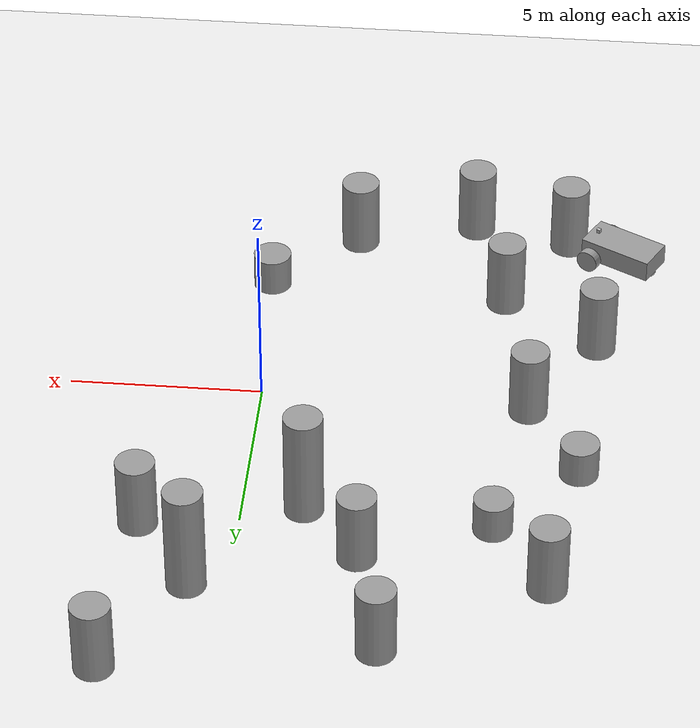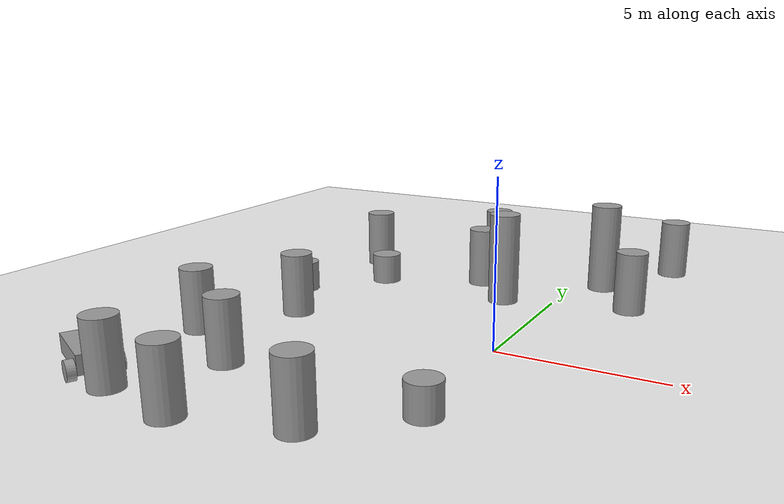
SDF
<sdf version="1.6">
 <world name="default">
  <model name="ground_plane">
   <static>1</static>
   <link name="link">
    <collision name="collision">
     <geometry><plane><normal>0 0 1</normal><size>100 100</size></plane></geometry>
     <surface><friction><ode><mu>100</mu><mu2>50</mu2></ode></friction></surface>
    </collision>
    <visual name="visual">
     <geometry><plane><normal>0 0 1</normal><size>100 100</size></plane></geometry>
     <material>
      <script><uri>file://media/materials/scripts/gazebo.material</uri><name>Gazebo/White</name></script>
     </material>
    </visual>
   </link>
  </model>
  <model name="unit_cylinder_5_clone_4">
   <link name="link">
    <inertial>
     <mass>1</mass>
     <inertia><ixx>0.145833</ixx><ixy>0</ixy><ixz>0</ixz><iyy>0.145833</iyy><iyz>0</iyz><izz>0.125</izz></inertia>
    </inertial>
    <visual name="visual">
     <geometry><cylinder><radius>0.5</radius><length>2</length></cylinder></geometry>
     <material>
      <script><name>Gazebo/Grey</name><uri>file://media/materials/scripts/gazebo.material</uri></script>
      <ambient>0.3 0.3 0.3 1</ambient>
      <diffuse>0.7 0.7 0.7 1</diffuse>
      <specular>0.01 0.01 0.01 1</specular>
      <emissive>0 0 0 1</emissive>
      <shader type="vertex"><normal_map>__default__</normal_map></shader>
     </material>
    </visual>
    <collision name="collision">
     <geometry><cylinder><radius>0.5</radius><length>2</length></cylinder></geometry>
     <surface>
      <friction>
       <ode><mu>1</mu><mu2>1</mu2><fdir1>0 0 0</fdir1><slip1>0</slip1><slip2>0</slip2></ode>
       <torsional>
        <coefficient>1</coefficient>
        <patch_radius>0</patch_radius>
        <surface_radius>0</surface_radius>
        <use_patch_radius>1</use_patch_radius>
        <ode><slip>0</slip></ode>
       </torsional>
      </friction>
      <bounce><restitution_coefficient>0</restitution_coefficient><threshold>1e+06</threshold></bounce>
      <contact>
       <collide_without_contact>0</collide_without_contact>
       <collide_without_contact_bitmask>1</collide_without_contact_bitmask>
       <collide_bitmask>1</collide_bitmask>
       <ode>
        <soft_cfm>0</soft_cfm>
        <soft_erp>0.2</soft_erp>
        <kp>1e+13</kp>
        <kd>1</kd>
        <max_vel>0.01</max_vel>
        <min_depth>0</min_depth>
       </ode>
       <bullet>
        <split_impulse>1</split_impulse>
        <split_impulse_penetration_threshold>-0.01</split_impulse_penetration_threshold>
        <soft_cfm>0</soft_cfm>
        <soft_erp>0.2</soft_erp>
        <kp>1e+13</kp>
        <kd>1</kd>
       </bullet>
      </contact>
     </surface>
    </collision>
   </link>
   <static>0</static>
   <pose>-6.93374 0.169609 0.999884 2.2e-05 -1e-06 -0.003242</pose>
  </model>
  <model name="unit_cylinder_5_clone_5">
   <link name="link">
    <inertial>
     <mass>1</mass>
     <inertia><ixx>0.145833</ixx><ixy>0</ixy><ixz>0</ixz><iyy>0.145833</iyy><iyz>0</iyz><izz>0.125</izz></inertia>
    </inertial>
    <visual name="visual">
     <geometry><cylinder><radius>0.5</radius><length>2</length></cylinder></geometry>
     <material>
      <script><name>Gazebo/Grey</name><uri>file://media/materials/scripts/gazebo.material</uri></script>
      <ambient>0.3 0.3 0.3 1</ambient>
      <diffuse>0.7 0.7 0.7 1</diffuse>
      <specular>0.01 0.01 0.01 1</specular>
      <emissive>0 0 0 1</emissive>
      <shader type="vertex"><normal_map>__default__</normal_map></shader>
     </material>
    </visual>
    <collision name="collision">
     <geometry><cylinder><radius>0.5</radius><length>2</length></cylinder></geometry>
     <surface>
      <friction>
       <ode><mu>1</mu><mu2>1</mu2><fdir1>0 0 0</fdir1><slip1>0</slip1><slip2>0</slip2></ode>
       <torsional>
        <coefficient>1</coefficient>
        <patch_radius>0</patch_radius>
        <surface_radius>0</surface_radius>
        <use_patch_radius>1</use_patch_radius>
        <ode><slip>0</slip></ode>
       </torsional>
      </friction>
      <bounce><restitution_coefficient>0</restitution_coefficient><threshold>1e+06</threshold></bounce>
      <contact>
       <collide_without_contact>0</collide_without_contact>
       <collide_without_contact_bitmask>1</collide_without_contact_bitmask>
       <collide_bitmask>1</collide_bitmask>
       <ode>
        <soft_cfm>0</soft_cfm>
        <soft_erp>0.2</soft_erp>
        <kp>1e+13</kp>
        <kd>1</kd>
        <max_vel>0.01</max_vel>
        <min_depth>0</min_depth>
       </ode>
       <bullet>
        <split_impulse>1</split_impulse>
        <split_impulse_penetration_threshold>-0.01</split_impulse_penetration_threshold>
        <soft_cfm>0</soft_cfm>
        <soft_erp>0.2</soft_erp>
        <kp>1e+13</kp>
        <kd>1</kd>
       </bullet>
      </contact>
     </surface>
    </collision>
   </link>
   <static>0</static>
   <pose>-8.58869 -2.60634 0.999884 2.2e-05 -1e-06 -0.00565</pose>
  </model>
  <model name="unit_cylinder_1">
   <pose>0.21006 -4.63987 0.499883 4e-06 -1e-06 -0.000351</pose>
   <link name="link">
    <inertial>
     <mass>1</mass>
     <inertia><ixx>0.145833</ixx><ixy>0</ixy><ixz>0</ixz><iyy>0.145833</iyy><iyz>0</iyz><izz>0.125</izz></inertia>
    </inertial>
    <collision name="collision">
     <geometry><cylinder><radius>0.5</radius><length>1</length></cylinder></geometry>
    </collision>
    <visual name="visual">
     <geometry><cylinder><radius>0.5</radius><length>1</length></cylinder></geometry>
     <material>
      <script><name>Gazebo/Grey</name><uri>file://media/materials/scripts/gazebo.material</uri></script>
     </material>
    </visual>
   </link>
  </model>
  <model name="unit_cylinder_1_clone_0">
   <pose>-6.29641 4.76433 0.499883 4e-06 -1e-06 -0.000309</pose>
   <link name="link">
    <inertial>
     <mass>1</mass>
     <inertia><ixx>0.145833</ixx><ixy>0</ixy><ixz>0</ixz><iyy>0.145833</iyy><iyz>0</iyz><izz>0.125</izz></inertia>
    </inertial>
    <collision name="collision">
     <geometry><cylinder><radius>0.5</radius><length>1</length></cylinder></geometry>
    </collision>
    <visual name="visual">
     <geometry><cylinder><radius>0.5</radius><length>1</length></cylinder></geometry>
     <material>
      <script><name>Gazebo/Grey</name><uri>file://media/materials/scripts/gazebo.material</uri></script>
     </material>
    </visual>
   </link>
  </model>
  <model name="unit_cylinder_1_clone_1">
   <pose>-8.3358 2.47751 0.499883 4e-06 -1e-06 0.00122</pose>
   <link name="link">
    <inertial>
     <mass>1</mass>
     <inertia><ixx>0.145833</ixx><ixy>0</ixy><ixz>0</ixz><iyy>0.145833</iyy><iyz>0</iyz><izz>0.125</izz></inertia>
    </inertial>
    <collision name="collision">
     <geometry><cylinder><radius>0.5</radius><length>1</length></cylinder></geometry>
    </collision>
    <visual name="visual">
     <geometry><cylinder><radius>0.5</radius><length>1</length></cylinder></geometry>
     <material>
      <script><name>Gazebo/Grey</name><uri>file://media/materials/scripts/gazebo.material</uri></script>
     </material>
    </visual>
   </link>
  </model>
  <model name="unit_cylinder_5_clone_1_clone">
   <link name="link">
    <inertial>
     <mass>1</mass>
     <inertia><ixx>0.145833</ixx><ixy>0</ixy><ixz>0</ixz><iyy>0.145833</iyy><iyz>0</iyz><izz>0.125</izz></inertia>
    </inertial>
    <visual name="visual">
     <geometry><cylinder><radius>0.5</radius><length>2</length></cylinder></geometry>
     <material>
      <script><name>Gazebo/Grey</name><uri>file://media/materials/scripts/gazebo.material</uri></script>
      <ambient>0.3 0.3 0.3 1</ambient>
      <diffuse>0.7 0.7 0.7 1</diffuse>
      <specular>0.01 0.01 0.01 1</specular>
      <emissive>0 0 0 1</emissive>
      <shader type="vertex"><normal_map>__default__</normal_map></shader>
     </material>
    </visual>
    <collision name="collision">
     <geometry><cylinder><radius>0.5</radius><length>2</length></cylinder></geometry>
     <surface>
      <friction>
       <ode><mu>1</mu><mu2>1</mu2><fdir1>0 0 0</fdir1><slip1>0</slip1><slip2>0</slip2></ode>
       <torsional>
        <coefficient>1</coefficient>
        <patch_radius>0</patch_radius>
        <surface_radius>0</surface_radius>
        <use_patch_radius>1</use_patch_radius>
        <ode><slip>0</slip></ode>
       </torsional>
      </friction>
      <bounce><restitution_coefficient>0</restitution_coefficient><threshold>1e+06</threshold></bounce>
      <contact>
       <collide_without_contact>0</collide_without_contact>
       <collide_without_contact_bitmask>1</collide_without_contact_bitmask>
       <collide_bitmask>1</collide_bitmask>
       <ode>
        <soft_cfm>0</soft_cfm>
        <soft_erp>0.2</soft_erp>
        <kp>1e+13</kp>
        <kd>1</kd>
        <max_vel>0.01</max_vel>
        <min_depth>0</min_depth>
       </ode>
       <bullet>
        <split_impulse>1</split_impulse>
        <split_impulse_penetration_threshold>-0.01</split_impulse_penetration_threshold>
        <soft_cfm>0</soft_cfm>
        <soft_erp>0.2</soft_erp>
        <kp>1e+13</kp>
        <kd>1</kd>
       </bullet>
      </contact>
     </surface>
    </collision>
   </link>
   <static>0</static>
   <pose>2.48657 5.34635 0.999884 2.2e-05 -1e-06 -0.002572</pose>
  </model>
  <model name="unit_cylinder_5_clone_1_clone_0">
   <link name="link">
    <inertial>
     <mass>1</mass>
     <inertia><ixx>0.145833</ixx><ixy>0</ixy><ixz>0</ixz><iyy>0.145833</iyy><iyz>0</iyz><izz>0.125</izz></inertia>
    </inertial>
    <visual name="visual">
     <geometry><cylinder><radius>0.5</radius><length>2</length></cylinder></geometry>
     <material>
      <script><name>Gazebo/Grey</name><uri>file://media/materials/scripts/gazebo.material</uri></script>
      <ambient>0.3 0.3 0.3 1</ambient>
      <diffuse>0.7 0.7 0.7 1</diffuse>
      <specular>0.01 0.01 0.01 1</specular>
      <emissive>0 0 0 1</emissive>
      <shader type="vertex"><normal_map>__default__</normal_map></shader>
     </material>
    </visual>
    <collision name="collision">
     <geometry><cylinder><radius>0.5</radius><length>2</length></cylinder></geometry>
     <surface>
      <friction>
       <ode><mu>1</mu><mu2>1</mu2><fdir1>0 0 0</fdir1><slip1>0</slip1><slip2>0</slip2></ode>
       <torsional>
        <coefficient>1</coefficient>
        <patch_radius>0</patch_radius>
        <surface_radius>0</surface_radius>
        <use_patch_radius>1</use_patch_radius>
        <ode><slip>0</slip></ode>
       </torsional>
      </friction>
      <bounce><restitution_coefficient>0</restitution_coefficient><threshold>1e+06</threshold></bounce>
      <contact>
       <collide_without_contact>0</collide_without_contact>
       <collide_without_contact_bitmask>1</collide_without_contact_bitmask>
       <collide_bitmask>1</collide_bitmask>
       <ode>
        <soft_cfm>0</soft_cfm>
        <soft_erp>0.2</soft_erp>
        <kp>1e+13</kp>
        <kd>1</kd>
        <max_vel>0.01</max_vel>
        <min_depth>0</min_depth>
       </ode>
       <bullet>
        <split_impulse>1</split_impulse>
        <split_impulse_penetration_threshold>-0.01</split_impulse_penetration_threshold>
        <soft_cfm>0</soft_cfm>
        <soft_erp>0.2</soft_erp>
        <kp>1e+13</kp>
        <kd>1</kd>
       </bullet>
      </contact>
     </surface>
    </collision>
   </link>
   <static>0</static>
   <pose>-3.04049 6.13013 0.999884 2.2e-05 -1e-06 -0.001543</pose>
  </model>
  <model name="unit_cylinder_0_0_clone_clone">
   <link name="link">
    <inertial>
     <mass>1</mass>
     <inertia><ixx>0.145833</ixx><ixy>0</ixy><ixz>0</ixz><iyy>0.145833</iyy><iyz>0</iyz><izz>0.125</izz></inertia>
    </inertial>
    <visual name="visual">
     <geometry><cylinder><radius>0.5</radius><length>3</length></cylinder></geometry>
     <material>
      <script><name>Gazebo/Grey</name><uri>file://media/materials/scripts/gazebo.material</uri></script>
      <ambient>0.3 0.3 0.3 1</ambient>
      <diffuse>0.7 0.7 0.7 1</diffuse>
      <specular>0.01 0.01 0.01 1</specular>
      <emissive>0 0 0 1</emissive>
      <shader type="vertex"><normal_map>__default__</normal_map></shader>
     </material>
    </visual>
    <collision name="collision">
     <geometry><cylinder><radius>0.5</radius><length>3</length></cylinder></geometry>
     <surface>
      <friction>
       <ode><mu>1</mu><mu2>1</mu2><fdir1>0 0 0</fdir1><slip1>0</slip1><slip2>0</slip2></ode>
       <torsional>
        <coefficient>1</coefficient>
        <patch_radius>0</patch_radius>
        <surface_radius>0</surface_radius>
        <use_patch_radius>1</use_patch_radius>
        <ode><slip>0</slip></ode>
       </torsional>
      </friction>
      <bounce><restitution_coefficient>0</restitution_coefficient><threshold>1e+06</threshold></bounce>
      <contact>
       <collide_without_contact>0</collide_without_contact>
       <collide_without_contact_bitmask>1</collide_without_contact_bitmask>
       <collide_bitmask>1</collide_bitmask>
       <ode>
        <soft_cfm>0</soft_cfm>
        <soft_erp>0.2</soft_erp>
        <kp>1e+13</kp>
        <kd>1</kd>
        <max_vel>0.01</max_vel>
        <min_depth>0</min_depth>
       </ode>
       <bullet>
        <split_impulse>1</split_impulse>
        <split_impulse_penetration_threshold>-0.01</split_impulse_penetration_threshold>
        <soft_cfm>0</soft_cfm>
        <soft_erp>0.2</soft_erp>
        <kp>1e+13</kp>
        <kd>1</kd>
       </bullet>
      </contact>
     </surface>
    </collision>
   </link>
   <static>0</static>
   <pose>1.00258 7.45887 1.49988 4.7e-05 -3e-06 -0.011031</pose>
  </model>
  <model name="unit_cylinder_0_0_clone_clone_1">
   <link name="link">
    <inertial>
     <mass>1</mass>
     <inertia><ixx>0.145833</ixx><ixy>0</ixy><ixz>0</ixz><iyy>0.145833</iyy><iyz>0</iyz><izz>0.125</izz></inertia>
    </inertial>
    <visual name="visual">
     <geometry><cylinder><radius>0.5</radius><length>3</length></cylinder></geometry>
     <material>
      <script><name>Gazebo/Grey</name><uri>file://media/materials/scripts/gazebo.material</uri></script>
      <ambient>0.3 0.3 0.3 1</ambient>
      <diffuse>0.7 0.7 0.7 1</diffuse>
      <specular>0.01 0.01 0.01 1</specular>
      <emissive>0 0 0 1</emissive>
      <shader type="vertex"><normal_map>__default__</normal_map></shader>
     </material>
    </visual>
    <collision name="collision">
     <geometry><cylinder><radius>0.5</radius><length>3</length></cylinder></geometry>
     <surface>
      <friction>
       <ode><mu>1</mu><mu2>1</mu2><fdir1>0 0 0</fdir1><slip1>0</slip1><slip2>0</slip2></ode>
       <torsional>
        <coefficient>1</coefficient>
        <patch_radius>0</patch_radius>
        <surface_radius>0</surface_radius>
        <use_patch_radius>1</use_patch_radius>
        <ode><slip>0</slip></ode>
       </torsional>
      </friction>
      <bounce><restitution_coefficient>0</restitution_coefficient><threshold>1e+06</threshold></bounce>
      <contact>
       <collide_without_contact>0</collide_without_contact>
       <collide_without_contact_bitmask>1</collide_without_contact_bitmask>
       <collide_bitmask>1</collide_bitmask>
       <ode>
        <soft_cfm>0</soft_cfm>
        <soft_erp>0.2</soft_erp>
        <kp>1e+13</kp>
        <kd>1</kd>
        <max_vel>0.01</max_vel>
        <min_depth>0</min_depth>
       </ode>
       <bullet>
        <split_impulse>1</split_impulse>
        <split_impulse_penetration_threshold>-0.01</split_impulse_penetration_threshold>
        <soft_cfm>0</soft_cfm>
        <soft_erp>0.2</soft_erp>
        <kp>1e+13</kp>
        <kd>1</kd>
       </bullet>
      </contact>
     </surface>
    </collision>
   </link>
   <static>0</static>
   <pose>-1.56827 4.46661 1.49988 4.7e-05 4e-06 0.007604</pose>
  </model>
  <model name="unit_cylinder_5_clone_0_clone_1">
   <link name="link">
    <inertial>
     <mass>1</mass>
     <inertia><ixx>0.145833</ixx><ixy>0</ixy><ixz>0</ixz><iyy>0.145833</iyy><iyz>0</iyz><izz>0.125</izz></inertia>
    </inertial>
    <visual name="visual">
     <geometry><cylinder><radius>0.5</radius><length>2</length></cylinder></geometry>
     <material>
      <script><name>Gazebo/Grey</name><uri>file://media/materials/scripts/gazebo.material</uri></script>
      <ambient>0.3 0.3 0.3 1</ambient>
      <diffuse>0.7 0.7 0.7 1</diffuse>
      <specular>0.01 0.01 0.01 1</specular>
      <emissive>0 0 0 1</emissive>
      <shader type="vertex"><normal_map>__default__</normal_map></shader>
     </material>
    </visual>
    <collision name="collision">
     <geometry><cylinder><radius>0.5</radius><length>2</length></cylinder></geometry>
     <surface>
      <friction>
       <ode><mu>1</mu><mu2>1</mu2><fdir1>0 0 0</fdir1><slip1>0</slip1><slip2>0</slip2></ode>
       <torsional>
        <coefficient>1</coefficient>
        <patch_radius>0</patch_radius>
        <surface_radius>0</surface_radius>
        <use_patch_radius>1</use_patch_radius>
        <ode><slip>0</slip></ode>
       </torsional>
      </friction>
      <bounce><restitution_coefficient>0</restitution_coefficient><threshold>1e+06</threshold></bounce>
      <contact>
       <collide_without_contact>0</collide_without_contact>
       <collide_without_contact_bitmask>1</collide_without_contact_bitmask>
       <collide_bitmask>1</collide_bitmask>
       <ode>
        <soft_cfm>0</soft_cfm>
        <soft_erp>0.2</soft_erp>
        <kp>1e+13</kp>
        <kd>1</kd>
        <max_vel>0.01</max_vel>
        <min_depth>0</min_depth>
       </ode>
       <bullet>
        <split_impulse>1</split_impulse>
        <split_impulse_penetration_threshold>-0.01</split_impulse_penetration_threshold>
        <soft_cfm>0</soft_cfm>
        <soft_erp>0.2</soft_erp>
        <kp>1e+13</kp>
        <kd>1</kd>
       </bullet>
      </contact>
     </surface>
    </collision>
   </link>
   <static>0</static>
   <pose>-1.98793 -6.68678 0.999884 2.2e-05 -1e-06 0.001991</pose>
  </model>
  <model name="unit_cylinder_5_clone_0_clone_6">
   <link name="link">
    <inertial>
     <mass>1</mass>
     <inertia><ixx>0.145833</ixx><ixy>0</ixy><ixz>0</ixz><iyy>0.145833</iyy><iyz>0</iyz><izz>0.125</izz></inertia>
    </inertial>
    <visual name="visual">
     <geometry><cylinder><radius>0.5</radius><length>2</length></cylinder></geometry>
     <material>
      <script><name>Gazebo/Grey</name><uri>file://media/materials/scripts/gazebo.material</uri></script>
      <ambient>0.3 0.3 0.3 1</ambient>
      <diffuse>0.7 0.7 0.7 1</diffuse>
      <specular>0.01 0.01 0.01 1</specular>
      <emissive>0 0 0 1</emissive>
      <shader type="vertex"><normal_map>__default__</normal_map></shader>
     </material>
    </visual>
    <collision name="collision">
     <geometry><cylinder><radius>0.5</radius><length>2</length></cylinder></geometry>
     <surface>
      <friction>
       <ode><mu>1</mu><mu2>1</mu2><fdir1>0 0 0</fdir1><slip1>0</slip1><slip2>0</slip2></ode>
       <torsional>
        <coefficient>1</coefficient>
        <patch_radius>0</patch_radius>
        <surface_radius>0</surface_radius>
        <use_patch_radius>1</use_patch_radius>
        <ode><slip>0</slip></ode>
       </torsional>
      </friction>
      <bounce><restitution_coefficient>0</restitution_coefficient><threshold>1e+06</threshold></bounce>
      <contact>
       <collide_without_contact>0</collide_without_contact>
       <collide_without_contact_bitmask>1</collide_without_contact_bitmask>
       <collide_bitmask>1</collide_bitmask>
       <ode>
        <soft_cfm>0</soft_cfm>
        <soft_erp>0.2</soft_erp>
        <kp>1e+13</kp>
        <kd>1</kd>
        <max_vel>0.01</max_vel>
        <min_depth>0</min_depth>
       </ode>
       <bullet>
        <split_impulse>1</split_impulse>
        <split_impulse_penetration_threshold>-0.01</split_impulse_penetration_threshold>
        <soft_cfm>0</soft_cfm>
        <soft_erp>0.2</soft_erp>
        <kp>1e+13</kp>
        <kd>1</kd>
       </bullet>
      </contact>
     </surface>
    </collision>
   </link>
   <static>0</static>
   <pose>-7.74649 6.83596 0.999884 2.2e-05 -1e-06 0.001268</pose>
  </model>
  <model name="unit_cylinder_5_clone_0_clone_7">
   <link name="link">
    <inertial>
     <mass>1</mass>
     <inertia><ixx>0.145833</ixx><ixy>0</ixy><ixz>0</ixz><iyy>0.145833</iyy><iyz>0</iyz><izz>0.125</izz></inertia>
    </inertial>
    <visual name="visual">
     <geometry><cylinder><radius>0.5</radius><length>2</length></cylinder></geometry>
     <material>
      <script><name>Gazebo/Grey</name><uri>file://media/materials/scripts/gazebo.material</uri></script>
      <ambient>0.3 0.3 0.3 1</ambient>
      <diffuse>0.7 0.7 0.7 1</diffuse>
      <specular>0.01 0.01 0.01 1</specular>
      <emissive>0 0 0 1</emissive>
      <shader type="vertex"><normal_map>__default__</normal_map></shader>
     </material>
    </visual>
    <collision name="collision">
     <geometry><cylinder><radius>0.5</radius><length>2</length></cylinder></geometry>
     <surface>
      <friction>
       <ode><mu>1</mu><mu2>1</mu2><fdir1>0 0 0</fdir1><slip1>0</slip1><slip2>0</slip2></ode>
       <torsional>
        <coefficient>1</coefficient>
        <patch_radius>0</patch_radius>
        <surface_radius>0</surface_radius>
        <use_patch_radius>1</use_patch_radius>
        <ode><slip>0</slip></ode>
       </torsional>
      </friction>
      <bounce><restitution_coefficient>0</restitution_coefficient><threshold>1e+06</threshold></bounce>
      <contact>
       <collide_without_contact>0</collide_without_contact>
       <collide_without_contact_bitmask>1</collide_without_contact_bitmask>
       <collide_bitmask>1</collide_bitmask>
       <ode>
        <soft_cfm>0</soft_cfm>
        <soft_erp>0.2</soft_erp>
        <kp>1e+13</kp>
        <kd>1</kd>
        <max_vel>0.01</max_vel>
        <min_depth>0</min_depth>
       </ode>
       <bullet>
        <split_impulse>1</split_impulse>
        <split_impulse_penetration_threshold>-0.01</split_impulse_penetration_threshold>
        <soft_cfm>0</soft_cfm>
        <soft_erp>0.2</soft_erp>
        <kp>1e+13</kp>
        <kd>1</kd>
       </bullet>
      </contact>
     </surface>
    </collision>
   </link>
   <static>0</static>
   <pose>-6.09067 -4.32217 0.999884 2.2e-05 -1e-06 0.000743</pose>
  </model>
  <model name="unit_cylinder_5_clone_0_clone_8">
   <link name="link">
    <inertial>
     <mass>1</mass>
     <inertia><ixx>0.145833</ixx><ixy>0</ixy><ixz>0</ixz><iyy>0.145833</iyy><iyz>0</iyz><izz>0.125</izz></inertia>
    </inertial>
    <visual name="visual">
     <geometry><cylinder><radius>0.5</radius><length>2</length></cylinder></geometry>
     <material>
      <script><name>Gazebo/Grey</name><uri>file://media/materials/scripts/gazebo.material</uri></script>
      <ambient>0.3 0.3 0.3 1</ambient>
      <diffuse>0.7 0.7 0.7 1</diffuse>
      <specular>0.01 0.01 0.01 1</specular>
      <emissive>0 0 0 1</emissive>
      <shader type="vertex"><normal_map>__default__</normal_map></shader>
     </material>
    </visual>
    <collision name="collision">
     <geometry><cylinder><radius>0.5</radius><length>2</length></cylinder></geometry>
     <surface>
      <friction>
       <ode><mu>1</mu><mu2>1</mu2><fdir1>0 0 0</fdir1><slip1>0</slip1><slip2>0</slip2></ode>
       <torsional>
        <coefficient>1</coefficient>
        <patch_radius>0</patch_radius>
        <surface_radius>0</surface_radius>
        <use_patch_radius>1</use_patch_radius>
        <ode><slip>0</slip></ode>
       </torsional>
      </friction>
      <bounce><restitution_coefficient>0</restitution_coefficient><threshold>1e+06</threshold></bounce>
      <contact>
       <collide_without_contact>0</collide_without_contact>
       <collide_without_contact_bitmask>1</collide_without_contact_bitmask>
       <collide_bitmask>1</collide_bitmask>
       <ode>
        <soft_cfm>0</soft_cfm>
        <soft_erp>0.2</soft_erp>
        <kp>1e+13</kp>
        <kd>1</kd>
        <max_vel>0.01</max_vel>
        <min_depth>0</min_depth>
       </ode>
       <bullet>
        <split_impulse>1</split_impulse>
        <split_impulse_penetration_threshold>-0.01</split_impulse_penetration_threshold>
        <soft_cfm>0</soft_cfm>
        <soft_erp>0.2</soft_erp>
        <kp>1e+13</kp>
        <kd>1</kd>
       </bullet>
      </contact>
     </surface>
    </collision>
   </link>
   <static>0</static>
   <pose>-7.67513 -7.00944 0.999884 2.2e-05 -1e-06 5e-05</pose>
  </model>
  <model name="unit_cylinder_5_clone_0_clone_9">
   <link name="link">
    <inertial>
     <mass>1</mass>
     <inertia><ixx>0.145833</ixx><ixy>0</ixy><ixz>0</ixz><iyy>0.145833</iyy><iyz>0</iyz><izz>0.125</izz></inertia>
    </inertial>
    <visual name="visual">
     <geometry><cylinder><radius>0.5</radius><length>2</length></cylinder></geometry>
     <material>
      <script><name>Gazebo/Grey</name><uri>file://media/materials/scripts/gazebo.material</uri></script>
      <ambient>0.3 0.3 0.3 1</ambient>
      <diffuse>0.7 0.7 0.7 1</diffuse>
      <specular>0.01 0.01 0.01 1</specular>
      <emissive>0 0 0 1</emissive>
      <shader type="vertex"><normal_map>__default__</normal_map></shader>
     </material>
    </visual>
    <collision name="collision">
     <geometry><cylinder><radius>0.5</radius><length>2</length></cylinder></geometry>
     <surface>
      <friction>
       <ode><mu>1</mu><mu2>1</mu2><fdir1>0 0 0</fdir1><slip1>0</slip1><slip2>0</slip2></ode>
       <torsional>
        <coefficient>1</coefficient>
        <patch_radius>0</patch_radius>
        <surface_radius>0</surface_radius>
        <use_patch_radius>1</use_patch_radius>
        <ode><slip>0</slip></ode>
       </torsional>
      </friction>
      <bounce><restitution_coefficient>0</restitution_coefficient><threshold>1e+06</threshold></bounce>
      <contact>
       <collide_without_contact>0</collide_without_contact>
       <collide_without_contact_bitmask>1</collide_without_contact_bitmask>
       <collide_bitmask>1</collide_bitmask>
       <ode>
        <soft_cfm>0</soft_cfm>
        <soft_erp>0.2</soft_erp>
        <kp>1e+13</kp>
        <kd>1</kd>
        <max_vel>0.01</max_vel>
        <min_depth>0</min_depth>
       </ode>
       <bullet>
        <split_impulse>1</split_impulse>
        <split_impulse_penetration_threshold>-0.01</split_impulse_penetration_threshold>
        <soft_cfm>0</soft_cfm>
        <soft_erp>0.2</soft_erp>
        <kp>1e+13</kp>
        <kd>1</kd>
       </bullet>
      </contact>
     </surface>
    </collision>
   </link>
   <static>0</static>
   <pose>-5.11629 -7.54679 0.999884 2.2e-05 -1e-06 0.000502</pose>
  </model>
  <model name="unit_cylinder_5_clone_0_clone_4_clone">
   <link name="link">
    <inertial>
     <mass>1</mass>
     <inertia><ixx>0.145833</ixx><ixy>0</ixy><ixz>0</ixz><iyy>0.145833</iyy><iyz>0</iyz><izz>0.125</izz></inertia>
    </inertial>
    <visual name="visual">
     <geometry><cylinder><radius>0.5</radius><length>2</length></cylinder></geometry>
     <material>
      <script><name>Gazebo/Grey</name><uri>file://media/materials/scripts/gazebo.material</uri></script>
      <ambient>0.3 0.3 0.3 1</ambient>
      <diffuse>0.7 0.7 0.7 1</diffuse>
      <specular>0.01 0.01 0.01 1</specular>
      <emissive>0 0 0 1</emissive>
      <shader type="vertex"><normal_map>__default__</normal_map></shader>
     </material>
    </visual>
    <collision name="collision">
     <geometry><cylinder><radius>0.5</radius><length>2</length></cylinder></geometry>
     <surface>
      <friction>
       <ode><mu>1</mu><mu2>1</mu2><fdir1>0 0 0</fdir1><slip1>0</slip1><slip2>0</slip2></ode>
       <torsional>
        <coefficient>1</coefficient>
        <patch_radius>0</patch_radius>
        <surface_radius>0</surface_radius>
        <use_patch_radius>1</use_patch_radius>
        <ode><slip>0</slip></ode>
       </torsional>
      </friction>
      <bounce><restitution_coefficient>0</restitution_coefficient><threshold>1e+06</threshold></bounce>
      <contact>
       <collide_without_contact>0</collide_without_contact>
       <collide_without_contact_bitmask>1</collide_without_contact_bitmask>
       <collide_bitmask>1</collide_bitmask>
       <ode>
        <soft_cfm>0</soft_cfm>
        <soft_erp>0.2</soft_erp>
        <kp>1e+13</kp>
        <kd>1</kd>
        <max_vel>0.01</max_vel>
        <min_depth>0</min_depth>
       </ode>
       <bullet>
        <split_impulse>1</split_impulse>
        <split_impulse_penetration_threshold>-0.01</split_impulse_penetration_threshold>
        <soft_cfm>0</soft_cfm>
        <soft_erp>0.2</soft_erp>
        <kp>1e+13</kp>
        <kd>1</kd>
       </bullet>
      </contact>
     </surface>
    </collision>
   </link>
   <static>0</static>
   <pose>2.81053 10.5041 0.999884 2.2e-05 -1e-06 0.001265</pose>
  </model>
  <model name="follower_vehicle">
   <pose>-9.03225 -6.34586 0.324954 -9e-06 -8.4e-05 -0.48988</pose>
   <link name="chassis">
    <pose>-0.151427 -0 0.175 0 -0 0</pose>
    <inertial>
     <mass>1.14395</mass>
     <inertia>
      <ixx>0.126164</ixx>
      <ixy>0</ixy>
      <ixz>0</ixz>
      <iyy>0.416519</iyy>
      <iyz>0</iyz>
      <izz>0.481014</izz>
     </inertia>
    </inertial>
    <visual name="visual">
     <geometry><box><size>2.01142 1 0.568726</size></box></geometry>
     <material>
      <script><uri>file://media/materials/scripts/gazebo.material</uri><name>Gazebo/Grey</name></script>
     </material>
    </visual>
    <collision name="collision">
     <geometry><box><size>2.01142 1 0.568726</size></box></geometry>
     <surface>
      <friction><ode><mu>1</mu><mu2>1</mu2><fdir1>0 0 0</fdir1><slip1>0</slip1><slip2>0</slip2></ode></friction>
      <bounce><restitution_coefficient>0</restitution_coefficient><threshold>1e+06</threshold></bounce>
      <contact>
       <collide_without_contact>0</collide_without_contact>
       <collide_without_contact_bitmask>1</collide_without_contact_bitmask>
       <collide_bitmask>1</collide_bitmask>
       <ode>
        <soft_cfm>0</soft_cfm>
        <soft_erp>0.2</soft_erp>
        <kp>1e+13</kp>
        <kd>1</kd>
        <max_vel>0.01</max_vel>
        <min_depth>0</min_depth>
       </ode>
      </contact>
     </surface>
    </collision>
   </link>
   <link name="wheel_1">
    <pose>0.554283 0.625029 -0.025 1.5707 -0 0</pose>
    <inertial>
     <mass>2</mass>
     <inertia><ixx>0.145833</ixx><ixy>0</ixy><ixz>0</ixz><iyy>0.145833</iyy><iyz>0</iyz><izz>0.125</izz></inertia>
    </inertial>
    <visual name="visual">
     <geometry><cylinder><radius>0.3</radius><length>0.25</length></cylinder></geometry>
     <material>
      <script><uri>file://media/materials/scripts/gazebo.material</uri><name>Gazebo/Grey</name></script>
     </material>
    </visual>
    <collision name="collision">
     <geometry><cylinder><radius>0.3</radius><length>0.25</length></cylinder></geometry>
     <surface>
      <friction><ode><mu>1</mu><mu2>1</mu2><fdir1>0 0 0</fdir1><slip1>0</slip1><slip2>0</slip2></ode></friction>
      <bounce><restitution_coefficient>0</restitution_coefficient><threshold>1e+06</threshold></bounce>
      <contact>
       <collide_without_contact>0</collide_without_contact>
       <collide_without_contact_bitmask>1</collide_without_contact_bitmask>
       <collide_bitmask>1</collide_bitmask>
       <ode>
        <soft_cfm>0</soft_cfm>
        <soft_erp>0.2</soft_erp>
        <kp>1e+13</kp>
        <kd>1</kd>
        <max_vel>0.01</max_vel>
        <min_depth>0</min_depth>
       </ode>
      </contact>
     </surface>
    </collision>
   </link>
   <link name="wheel_2">
    <pose>0.554282 -0.625029 -0.025 1.5707 -0 0</pose>
    <inertial>
     <mass>2</mass>
     <inertia><ixx>0.145833</ixx><ixy>0</ixy><ixz>0</ixz><iyy>0.145833</iyy><iyz>0</iyz><izz>0.125</izz></inertia>
    </inertial>
    <visual name="visual">
     <geometry><cylinder><radius>0.3</radius><length>0.25</length></cylinder></geometry>
     <material>
      <script><uri>file://media/materials/scripts/gazebo.material</uri><name>Gazebo/Grey</name></script>
     </material>
    </visual>
    <collision name="collision">
     <geometry><cylinder><radius>0.3</radius><length>0.25</length></cylinder></geometry>
     <surface>
      <friction><ode><mu>1</mu><mu2>1</mu2><fdir1>0 0 0</fdir1><slip1>0</slip1><slip2>0</slip2></ode></friction>
      <bounce><restitution_coefficient>0</restitution_coefficient><threshold>1e+06</threshold></bounce>
      <contact>
       <collide_without_contact>0</collide_without_contact>
       <collide_without_contact_bitmask>1</collide_without_contact_bitmask>
       <collide_bitmask>1</collide_bitmask>
       <ode>
        <soft_cfm>0</soft_cfm>
        <soft_erp>0.2</soft_erp>
        <kp>1e+13</kp>
        <kd>1</kd>
        <max_vel>0.01</max_vel>
        <min_depth>0</min_depth>
       </ode>
      </contact>
     </surface>
    </collision>
   </link>
   <link name="caster">
    <pose>-0.957138 -0 -0.125 0 -0 0</pose>
    <inertial>
     <mass>1</mass>
     <inertia><ixx>0.1</ixx><ixy>0</ixy><ixz>0</ixz><iyy>0.1</iyy><iyz>0</iyz><izz>0.1</izz></inertia>
    </inertial>
    <visual name="visual">
     <geometry><sphere><radius>0.2</radius></sphere></geometry>
     <material>
      <script><uri>file://media/materials/scripts/gazebo.material</uri><name>Gazebo/Grey</name></script>
     </material>
    </visual>
    <collision name="collision">
     <geometry><sphere><radius>0.2</radius></sphere></geometry>
     <surface>
      <friction><ode><mu>1</mu><mu2>1</mu2><fdir1>0 0 0</fdir1><slip1>0</slip1><slip2>0</slip2></ode></friction>
      <bounce><restitution_coefficient>0</restitution_coefficient><threshold>1e+06</threshold></bounce>
      <contact>
       <collide_without_contact>0</collide_without_contact>
       <collide_without_contact_bitmask>1</collide_without_contact_bitmask>
       <collide_bitmask>1</collide_bitmask>
       <ode>
        <soft_cfm>0</soft_cfm>
        <soft_erp>0.2</soft_erp>
        <kp>1e+13</kp>
        <kd>1</kd>
        <max_vel>0.01</max_vel>
        <min_depth>0</min_depth>
       </ode>
      </contact>
     </surface>
    </collision>
   </link>
   <model name="depth_camera">
    <link name="link">
     <pose>0.05 0.05 0.05 0 -0 0</pose>
     <inertial>
      <mass>0.1</mass>
      <inertia>
       <ixx>0.000166667</ixx>
       <iyy>0.000166667</iyy>
       <izz>0.000166667</izz>
       <ixy>0</ixy>
       <ixz>0</ixz>
       <iyz>0</iyz>
      </inertia>
     </inertial>
     <collision name="collision"><geometry><box><size>0.1 0.1 0.1</size></box></geometry></collision>
     <visual name="visual"><geometry><box><size>0.1 0.1 0.1</size></box></geometry></visual>
     <sensor name="camera" type="depth">
      <camera name="depth">
       <horizontal_fov>1.047</horizontal_fov>
       <image><width>320</width><height>240</height></image>
       <clip><near>0.1</near><far>100</far></clip>
      </camera>
      <always_on>1</always_on>
      <update_rate>30</update_rate>
      <visualize>1</visualize>
     </sensor>
    </link>
    <pose>0.569632 -0.03223 0.502056 0 -0 0</pose>
   </model>
   <joint name="chassis_wheel_1_revolute" type="revolute">
    <parent>chassis</parent>
    <child>wheel_1</child>
    <axis>
     <xyz>0 0 1</xyz>
     <use_parent_model_frame>0</use_parent_model_frame>
     <limit>
      <lower>-1.79769e+308</lower>
      <upper>1.79769e+308</upper>
      <effort>-1</effort>
      <velocity>-1</velocity>
     </limit>
     <dynamics>
      <spring_reference>0</spring_reference>
      <spring_stiffness>0</spring_stiffness>
      <damping>0</damping>
      <friction>0</friction>
     </dynamics>
    </axis>
    <physics>
     <ode><limit><cfm>0</cfm><erp>0.2</erp></limit><suspension><cfm>0</cfm><erp>0.2</erp></suspension></ode>
    </physics>
   </joint>
   <joint name="chassis_wheel_2_revolute" type="revolute">
    <parent>chassis</parent>
    <child>wheel_2</child>
    <axis>
     <xyz>0 0 1</xyz>
     <use_parent_model_frame>0</use_parent_model_frame>
     <limit>
      <lower>-1.79769e+308</lower>
      <upper>1.79769e+308</upper>
      <effort>-1</effort>
      <velocity>-1</velocity>
     </limit>
     <dynamics>
      <spring_reference>0</spring_reference>
      <spring_stiffness>0</spring_stiffness>
      <damping>0</damping>
      <friction>0</friction>
     </dynamics>
    </axis>
    <physics>
     <ode><limit><cfm>0</cfm><erp>0.2</erp></limit><suspension><cfm>0</cfm><erp>0.2</erp></suspension></ode>
    </physics>
   </joint>
   <joint name="chassis_caster_ball" type="ball">
    <parent>chassis</parent>
    <child>caster</child>
    <physics>
     <ode><limit><cfm>0</cfm><erp>0.2</erp></limit><suspension><cfm>0</cfm><erp>0.2</erp></suspension></ode>
    </physics>
   </joint>
   <joint name="chassis_depth_camera_link_fixed" type="fixed">
    <parent>chassis</parent>
    <child>depth_camera::link</child>
    <physics>
     <ode><limit><cfm>0</cfm><erp>0.2</erp></limit><suspension><cfm>0</cfm><erp>0.2</erp></suspension></ode>
    </physics>
   </joint>
   <static>0</static>
   <plugin name="follower" filename="libFollowerPlugin.so"/>
  </model>
  <model name="unit_cylinder_5_clone_1_clone_0_clone">
   <link name="link">
    <inertial>
     <mass>1</mass>
     <inertia><ixx>0.145833</ixx><ixy>0</ixy><ixz>0</ixz><iyy>0.145833</iyy><iyz>0</iyz><izz>0.125</izz></inertia>
    </inertial>
    <visual name="visual">
     <geometry><cylinder><radius>0.5</radius><length>2</length></cylinder></geometry>
     <material>
      <script><name>Gazebo/Grey</name><uri>file://media/materials/scripts/gazebo.material</uri></script>
      <ambient>0.3 0.3 0.3 1</ambient>
      <diffuse>0.7 0.7 0.7 1</diffuse>
      <specular>0.01 0.01 0.01 1</specular>
      <emissive>0 0 0 1</emissive>
      <shader type="vertex"><normal_map>__default__</normal_map></shader>
     </material>
    </visual>
    <collision name="collision">
     <geometry><cylinder><radius>0.5</radius><length>2</length></cylinder></geometry>
     <surface>
      <friction>
       <ode><mu>1</mu><mu2>1</mu2><fdir1>0 0 0</fdir1><slip1>0</slip1><slip2>0</slip2></ode>
       <torsional>
        <coefficient>1</coefficient>
        <patch_radius>0</patch_radius>
        <surface_radius>0</surface_radius>
        <use_patch_radius>1</use_patch_radius>
        <ode><slip>0</slip></ode>
       </torsional>
      </friction>
      <bounce><restitution_coefficient>0</restitution_coefficient><threshold>1e+06</threshold></bounce>
      <contact>
       <collide_without_contact>0</collide_without_contact>
       <collide_without_contact_bitmask>1</collide_without_contact_bitmask>
       <collide_bitmask>1</collide_bitmask>
       <ode>
        <soft_cfm>0</soft_cfm>
        <soft_erp>0.2</soft_erp>
        <kp>1e+13</kp>
        <kd>1</kd>
        <max_vel>0.01</max_vel>
        <min_depth>0</min_depth>
       </ode>
       <bullet>
        <split_impulse>1</split_impulse>
        <split_impulse_penetration_threshold>-0.01</split_impulse_penetration_threshold>
        <soft_cfm>0</soft_cfm>
        <soft_erp>0.2</soft_erp>
        <kp>1e+13</kp>
        <kd>1</kd>
       </bullet>
      </contact>
     </surface>
    </collision>
   </link>
   <static>0</static>
   <pose>-3.78876 9.36628 0.999884 2.2e-05 -1e-06 -0.001516</pose>
  </model>
 </world>
</sdf>
